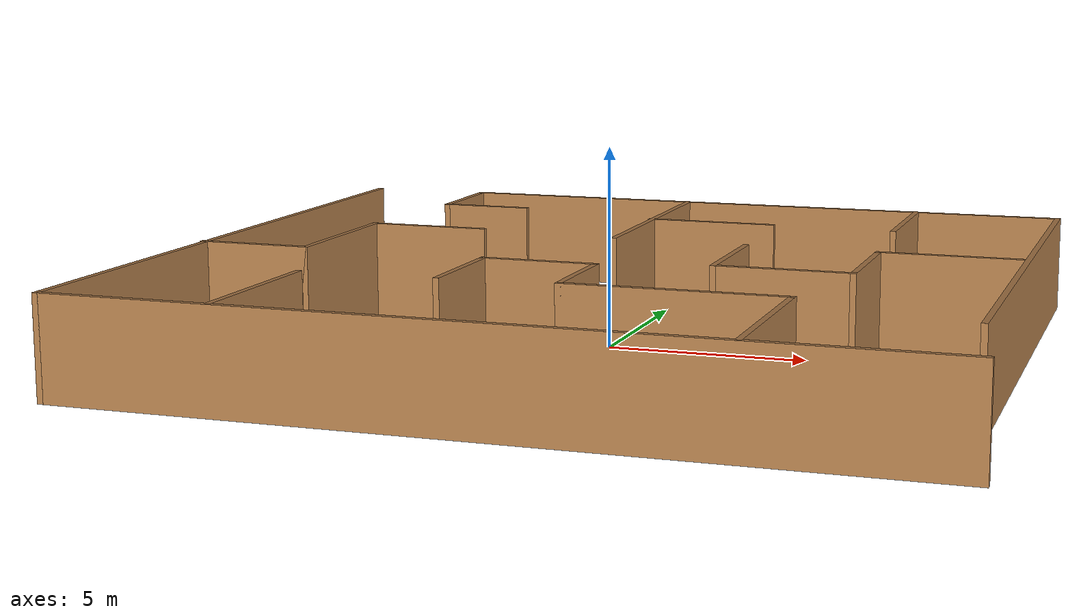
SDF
<?xml version='1.0'?>
<sdf version='1.7'>
  <model name='maze'>
    <pose>0.219017 -0.480174 0 0 -0 0</pose>
    <link name='Wall_10'>
      <collision name='Wall_10_Collision'>
        <geometry>
          <box>
            <size>2.5 0.15 2.5</size>
          </box>
        </geometry>
        <pose>0 0 1.25 0 -0 0</pose>
      </collision>
      <visual name='Wall_10_Visual'>
        <pose>0 0 1.25 0 -0 0</pose>
        <geometry>
          <box>
            <size>2.5 0.15 2.5</size>
          </box>
        </geometry>
        <material>
          <script>
            <uri>file://media/materials/scripts/gazebo.material</uri>
            <name>Gazebo/Wood</name>
          </script>
          <ambient>1 1 1 1</ambient>
        </material>
        <meta>
          <layer>0</layer>
        </meta>
      </visual>
      <pose>-5.84317 6.39848 0 0 -0 3.14159</pose>
    </link>
    <link name='Wall_11'>
      <collision name='Wall_11_Collision'>
        <geometry>
          <box>
            <size>2.75 0.15 2.5</size>
          </box>
        </geometry>
        <pose>0 0 1.25 0 -0 0</pose>
      </collision>
      <visual name='Wall_11_Visual'>
        <pose>0 0 1.25 0 -0 0</pose>
        <geometry>
          <box>
            <size>2.75 0.15 2.5</size>
          </box>
        </geometry>
        <material>
          <script>
            <uri>file://media/materials/scripts/gazebo.material</uri>
            <name>Gazebo/Wood</name>
          </script>
          <ambient>1 1 1 1</ambient>
        </material>
        <meta>
          <layer>0</layer>
        </meta>
      </visual>
      <pose>-7.01817 7.69848 0 0 -0 1.5708</pose>
    </link>
    <link name='Wall_12'>
      <collision name='Wall_12_Collision'>
        <geometry>
          <box>
            <size>17 0.15 2.5</size>
          </box>
        </geometry>
        <pose>0 0 1.25 0 -0 0</pose>
      </collision>
      <visual name='Wall_12_Visual'>
        <pose>0 0 1.25 0 -0 0</pose>
        <geometry>
          <box>
            <size>17 0.15 2.5</size>
          </box>
        </geometry>
        <material>
          <script>
            <uri>file://media/materials/scripts/gazebo.material</uri>
            <name>Gazebo/Wood</name>
          </script>
          <ambient>1 1 1 1</ambient>
        </material>
        <meta>
          <layer>0</layer>
        </meta>
      </visual>
      <pose>1.40683 8.99848 0 0 -0 0</pose>
    </link>
    <link name='Wall_13'>
      <collision name='Wall_13_Collision'>
        <geometry>
          <box>
            <size>15 0.15 2.5</size>
          </box>
        </geometry>
        <pose>0 0 1.25 0 -0 0</pose>
      </collision>
      <visual name='Wall_13_Visual'>
        <pose>0 0 1.25 0 -0 0</pose>
        <geometry>
          <box>
            <size>15 0.15 2.5</size>
          </box>
        </geometry>
        <material>
          <script>
            <uri>file://media/materials/scripts/gazebo.material</uri>
            <name>Gazebo/Wood</name>
          </script>
          <ambient>1 1 1 1</ambient>
        </material>
        <meta>
          <layer>0</layer>
        </meta>
      </visual>
      <pose>9.83183 1.57348 0 0 -0 -1.5708</pose>
    </link>
    <link name='Wall_15'>
      <collision name='Wall_15_Collision'>
        <geometry>
          <box>
            <size>3 0.15 2.5</size>
          </box>
        </geometry>
        <pose>0 0 1.25 0 -0 0</pose>
      </collision>
      <visual name='Wall_15_Visual'>
        <pose>0 0 1.25 0 -0 0</pose>
        <geometry>
          <box>
            <size>3 0.15 2.5</size>
          </box>
        </geometry>
        <material>
          <script>
            <uri>file://media/materials/scripts/gazebo.material</uri>
            <name>Gazebo/Wood</name>
          </script>
          <ambient>1 1 1 1</ambient>
        </material>
        <meta>
          <layer>0</layer>
        </meta>
      </visual>
      <pose>-8.90695 -1.65218 0 0 -0 0</pose>
    </link>
    <link name='Wall_16'>
      <collision name='Wall_16_Collision'>
        <geometry>
          <box>
            <size>4.25 0.15 2.5</size>
          </box>
        </geometry>
        <pose>0 0 1.25 0 -0 0</pose>
      </collision>
      <visual name='Wall_16_Visual'>
        <pose>0 0 1.25 0 -0 0</pose>
        <geometry>
          <box>
            <size>4.25 0.15 2.5</size>
          </box>
        </geometry>
        <material>
          <script>
            <uri>file://media/materials/scripts/gazebo.material</uri>
            <name>Gazebo/Wood</name>
          </script>
          <ambient>1 1 1 1</ambient>
        </material>
        <meta>
          <layer>0</layer>
        </meta>
      </visual>
      <pose>-7.48195 0.39782 0 0 -0 1.5708</pose>
    </link>
    <link name='Wall_17'>
      <collision name='Wall_17_Collision'>
        <geometry>
          <box>
            <size>3.25 0.15 2.5</size>
          </box>
        </geometry>
        <pose>0 0 1.25 0 -0 0</pose>
      </collision>
      <visual name='Wall_17_Visual'>
        <pose>0 0 1.25 0 -0 0</pose>
        <geometry>
          <box>
            <size>3.25 0.15 2.5</size>
          </box>
        </geometry>
        <material>
          <script>
            <uri>file://media/materials/scripts/gazebo.material</uri>
            <name>Gazebo/Wood</name>
          </script>
          <ambient>1 1 1 1</ambient>
        </material>
        <meta>
          <layer>0</layer>
        </meta>
      </visual>
      <pose>-5.93195 2.44782 0 0 -0 0</pose>
    </link>
    <link name='Wall_19'>
      <collision name='Wall_19_Collision'>
        <geometry>
          <box>
            <size>4.25 0.15 2.5</size>
          </box>
        </geometry>
        <pose>0 0 1.25 0 -0 0</pose>
      </collision>
      <visual name='Wall_19_Visual'>
        <pose>0 0 1.25 0 -0 0</pose>
        <geometry>
          <box>
            <size>4.25 0.15 2.5</size>
          </box>
        </geometry>
        <material>
          <script>
            <uri>file://media/materials/scripts/gazebo.material</uri>
            <name>Gazebo/Wood</name>
          </script>
          <ambient>1 1 1 1</ambient>
        </material>
        <meta>
          <layer>0</layer>
        </meta>
      </visual>
      <pose>-6.08412 -6.88418 0 0 -0 1.5708</pose>
    </link>
    <link name='Wall_21'>
      <collision name='Wall_21_Collision'>
        <geometry>
          <box>
            <size>7 0.15 2.5</size>
          </box>
        </geometry>
        <pose>0 0 1.25 0 -0 0</pose>
      </collision>
      <visual name='Wall_21_Visual'>
        <pose>0 0 1.25 0 -0 0</pose>
        <geometry>
          <box>
            <size>7 0.15 2.5</size>
          </box>
        </geometry>
        <material>
          <script>
            <uri>file://media/materials/scripts/gazebo.material</uri>
            <name>Gazebo/Wood</name>
          </script>
          <ambient>1 1 1 1</ambient>
        </material>
        <meta>
          <layer>0</layer>
        </meta>
      </visual>
      <pose>-0.622612 5.56264 0 0 -0 -1.5708</pose>
    </link>
    <link name='Wall_23'>
      <collision name='Wall_23_Collision'>
        <geometry>
          <box>
            <size>3.5 0.15 2.5</size>
          </box>
        </geometry>
        <pose>0 0 1.25 0 -0 0</pose>
      </collision>
      <visual name='Wall_23_Visual'>
        <pose>0 0 1.25 0 -0 0</pose>
        <geometry>
          <box>
            <size>3.5 0.15 2.5</size>
          </box>
        </geometry>
        <material>
          <script>
            <uri>file://media/materials/scripts/gazebo.material</uri>
            <name>Gazebo/Wood</name>
          </script>
          <ambient>1 1 1 1</ambient>
        </material>
        <meta>
          <layer>0</layer>
        </meta>
      </visual>
      <pose>1.01193 5.50846 0 0 -0 0</pose>
    </link>
    <link name='Wall_25'>
      <collision name='Wall_25_Collision'>
        <geometry>
          <box>
            <size>3.75 0.15 2.5</size>
          </box>
        </geometry>
        <pose>0 0 1.25 0 -0 0</pose>
      </collision>
      <visual name='Wall_25_Visual'>
        <pose>0 0 1.25 0 -0 0</pose>
        <geometry>
          <box>
            <size>3.75 0.15 2.5</size>
          </box>
        </geometry>
        <material>
          <script>
            <uri>file://media/materials/scripts/gazebo.material</uri>
            <name>Gazebo/Wood</name>
          </script>
          <ambient>1 1 1 1</ambient>
        </material>
        <meta>
          <layer>0</layer>
        </meta>
      </visual>
      <pose>5.97165 7.22809 0 0 -0 -1.5708</pose>
    </link>
    <link name='Wall_27'>
      <collision name='Wall_27_Collision'>
        <geometry>
          <box>
            <size>3.25 0.15 2.5</size>
          </box>
        </geometry>
        <pose>0 0 1.25 0 -0 0</pose>
      </collision>
      <visual name='Wall_27_Visual'>
        <pose>0 0 1.25 0 -0 0</pose>
        <geometry>
          <box>
            <size>3.25 0.15 2.5</size>
          </box>
        </geometry>
        <material>
          <script>
            <uri>file://media/materials/scripts/gazebo.material</uri>
            <name>Gazebo/Wood</name>
          </script>
          <ambient>1 1 1 1</ambient>
        </material>
        <meta>
          <layer>0</layer>
        </meta>
      </visual>
      <pose>2.85657 0.479277 0 0 -0 -1.5708</pose>
    </link>
    <link name='Wall_28'>
      <collision name='Wall_28_Collision'>
        <geometry>
          <box>
            <size>3.5 0.15 2.5</size>
          </box>
        </geometry>
        <pose>0 0 1.25 0 -0 0</pose>
      </collision>
      <visual name='Wall_28_Visual'>
        <pose>0 0 1.25 0 -0 0</pose>
        <geometry>
          <box>
            <size>3.5 0.15 2.5</size>
          </box>
        </geometry>
        <material>
          <script>
            <uri>file://media/materials/scripts/gazebo.material</uri>
            <name>Gazebo/Wood</name>
          </script>
          <ambient>1 1 1 1</ambient>
        </material>
        <meta>
          <layer>0</layer>
        </meta>
      </visual>
      <pose>4.53157 -1.07072 0 0 -0 0</pose>
    </link>
    <link name='Wall_29'>
      <collision name='Wall_29_Collision'>
        <geometry>
          <box>
            <size>3.25 0.15 2.5</size>
          </box>
        </geometry>
        <pose>0 0 1.25 0 -0 0</pose>
      </collision>
      <visual name='Wall_29_Visual'>
        <pose>0 0 1.25 0 -0 0</pose>
        <geometry>
          <box>
            <size>3.25 0.15 2.5</size>
          </box>
        </geometry>
        <material>
          <script>
            <uri>file://media/materials/scripts/gazebo.material</uri>
            <name>Gazebo/Wood</name>
          </script>
          <ambient>1 1 1 1</ambient>
        </material>
        <meta>
          <layer>0</layer>
        </meta>
      </visual>
      <pose>6.20657 0.479277 0 0 -0 1.5708</pose>
    </link>
    <link name='Wall_30'>
      <collision name='Wall_30_Collision'>
        <geometry>
          <box>
            <size>3.75 0.15 2.5</size>
          </box>
        </geometry>
        <pose>0 0 1.25 0 -0 0</pose>
      </collision>
      <visual name='Wall_30_Visual'>
        <pose>0 0 1.25 0 -0 0</pose>
        <geometry>
          <box>
            <size>3.75 0.15 2.5</size>
          </box>
        </geometry>
        <material>
          <script>
            <uri>file://media/materials/scripts/gazebo.material</uri>
            <name>Gazebo/Wood</name>
          </script>
          <ambient>1 1 1 1</ambient>
        </material>
        <meta>
          <layer>0</layer>
        </meta>
      </visual>
      <pose>8.00657 2.02928 0 0 -0 0</pose>
    </link>
    <link name='Wall_32'>
      <collision name='Wall_32_Collision'>
        <geometry>
          <box>
            <size>3 0.15 2.5</size>
          </box>
        </geometry>
        <pose>0 0 1.25 0 -0 0</pose>
      </collision>
      <visual name='Wall_32_Visual'>
        <pose>0 0 1.25 0 -0 0</pose>
        <geometry>
          <box>
            <size>3 0.15 2.5</size>
          </box>
        </geometry>
        <material>
          <script>
            <uri>file://media/materials/scripts/gazebo.material</uri>
            <name>Gazebo/Wood</name>
          </script>
          <ambient>1 1 1 1</ambient>
        </material>
        <meta>
          <layer>0</layer>
        </meta>
      </visual>
      <pose>-2.68585 -3.18044 0 0 -0 1.5708</pose>
    </link>
    <link name='Wall_33'>
      <collision name='Wall_33_Collision'>
        <geometry>
          <box>
            <size>3 0.15 2.5</size>
          </box>
        </geometry>
        <pose>0 0 1.25 0 -0 0</pose>
      </collision>
      <visual name='Wall_33_Visual'>
        <pose>0 0 1.25 0 -0 0</pose>
        <geometry>
          <box>
            <size>3 0.15 2.5</size>
          </box>
        </geometry>
        <material>
          <script>
            <uri>file://media/materials/scripts/gazebo.material</uri>
            <name>Gazebo/Wood</name>
          </script>
          <ambient>1 1 1 1</ambient>
        </material>
        <meta>
          <layer>0</layer>
        </meta>
      </visual>
      <pose>-1.26085 -1.75544 0 0 -0 0</pose>
    </link>
    <link name='Wall_34'>
      <collision name='Wall_34_Collision'>
        <geometry>
          <box>
            <size>2.75 0.15 2.5</size>
          </box>
        </geometry>
        <pose>0 0 1.25 0 -0 0</pose>
      </collision>
      <visual name='Wall_34_Visual'>
        <pose>0 0 1.25 0 -0 0</pose>
        <geometry>
          <box>
            <size>2.75 0.15 2.5</size>
          </box>
        </geometry>
        <material>
          <script>
            <uri>file://media/materials/scripts/gazebo.material</uri>
            <name>Gazebo/Wood</name>
          </script>
          <ambient>1 1 1 1</ambient>
        </material>
        <meta>
          <layer>0</layer>
        </meta>
      </visual>
      <pose>0.164153 -3.05544 0 0 -0 -1.5708</pose>
    </link>
    <link name='Wall_35'>
      <collision name='Wall_35_Collision'>
        <geometry>
          <box>
            <size>5.5 0.15 2.5</size>
          </box>
        </geometry>
        <pose>0 0 1.25 0 -0 0</pose>
      </collision>
      <visual name='Wall_35_Visual'>
        <pose>0 0 1.25 0 -0 0</pose>
        <geometry>
          <box>
            <size>5.5 0.15 2.5</size>
          </box>
        </geometry>
        <material>
          <script>
            <uri>file://media/materials/scripts/gazebo.material</uri>
            <name>Gazebo/Wood</name>
          </script>
          <ambient>1 1 1 1</ambient>
        </material>
        <meta>
          <layer>0</layer>
        </meta>
      </visual>
      <pose>2.83915 -4.35544 0 0 -0 0</pose>
    </link>
    <link name='Wall_36'>
      <collision name='Wall_36_Collision'>
        <geometry>
          <box>
            <size>4.75 0.15 2.5</size>
          </box>
        </geometry>
        <pose>0 0 1.25 0 -0 0</pose>
      </collision>
      <visual name='Wall_36_Visual'>
        <pose>0 0 1.25 0 -0 0</pose>
        <geometry>
          <box>
            <size>4.75 0.15 2.5</size>
          </box>
        </geometry>
        <material>
          <script>
            <uri>file://media/materials/scripts/gazebo.material</uri>
            <name>Gazebo/Wood</name>
          </script>
          <ambient>1 1 1 1</ambient>
        </material>
        <meta>
          <layer>0</layer>
        </meta>
      </visual>
      <pose>5.51415 -6.65544 0 0 -0 -1.5708</pose>
    </link>
    <link name='Wall_7'>
      <collision name='Wall_7_Collision'>
        <geometry>
          <box>
            <size>18 0.15 2.5</size>
          </box>
        </geometry>
        <pose>0 0 1.25 0 -0 0</pose>
      </collision>
      <visual name='Wall_7_Visual'>
        <pose>0 0 1.25 0 -0 0</pose>
        <geometry>
          <box>
            <size>18 0.15 2.5</size>
          </box>
        </geometry>
        <material>
          <script>
            <uri>file://media/materials/scripts/gazebo.material</uri>
            <name>Gazebo/Wood</name>
          </script>
          <ambient>1 1 1 1</ambient>
        </material>
        <meta>
          <layer>0</layer>
        </meta>
      </visual>
      <pose>-10.268 -0.103091 0 0 -0 -1.5708</pose>
    </link>
    <link name='Wall_8'>
      <collision name='Wall_8_Collision'>
        <geometry>
          <box>
            <size>20.75 0.15 2.5</size>
          </box>
        </geometry>
        <pose>0 0 1.25 0 -0 0</pose>
      </collision>
      <visual name='Wall_8_Visual'>
        <pose>0 0 1.25 0 -0 0</pose>
        <geometry>
          <box>
            <size>20.75 0.15 2.5</size>
          </box>
        </geometry>
        <material>
          <script>
            <uri>file://media/materials/scripts/gazebo.material</uri>
            <name>Gazebo/Wood</name>
          </script>
          <ambient>1 1 1 1</ambient>
        </material>
        <meta>
          <layer>0</layer>
        </meta>
      </visual>
      <pose>0.031951 -9.02809 0 0 -0 0</pose>
    </link>
    <static>1</static>
  </model>
</sdf>
